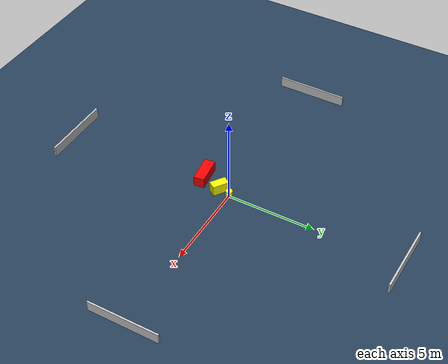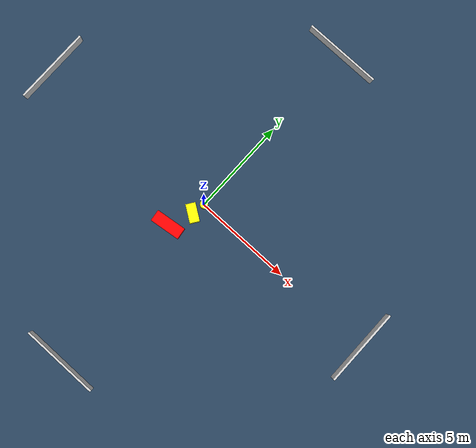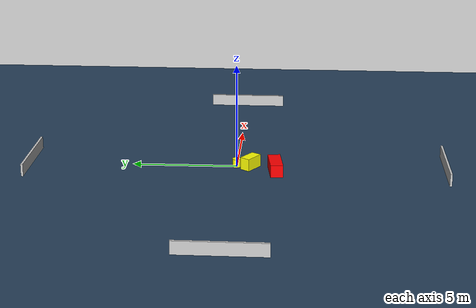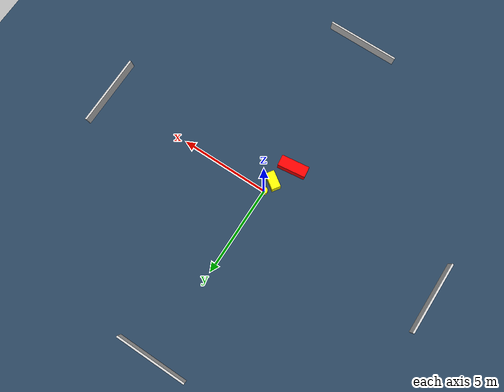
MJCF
<?xml version="1.0" ?>
<mujoco model="generated_environment">
  <option timestep="0.01" integrator="RK4" cone="elliptic"/>
  <default>
    <geom density="1"/>
  </default>
  <asset>
    <texture builtin="gradient" height="3072" name="skybox" rgb1="0.3 0.5 0.7" rgb2="0 0 0" type="skybox" width="512"/>
    <texture builtin="checker" height="300" name="groundplane" rgb1="0.2 0.3 0.4" rgb2="0.1 0.2 0.3" type="2d" width="300"/>
    <material name="groundplane" reflectance="0.2" texrepeat="5 5" texture="groundplane"/>
  </asset>
  <worldbody>
    <light dir="0 0 -1" directional="true" pos="0 0 1.5"/>
    <geom condim="3" friction="0.5 0.005 0.001" material="groundplane" name="floor" pos="0 0 0" size="0 0 0.05" type="plane"/>
    <body name="walls">
      <geom name="wall_1" condim="4" pos="-10.0 0.0 0.3" rgba="0.800000011920929 0.800000011920929 0.800000011920929 1.0" size="0.05 2.0 0.3" type="box"/>
      <geom name="wall_2" condim="4" pos="10.0 0.0 0.3" rgba="0.800000011920929 0.800000011920929 0.800000011920929 1.0" size="0.05 2.0 0.3" type="box"/>
      <geom name="wall_3" condim="4" pos="0.0 -10.0 0.3" rgba="0.800000011920929 0.800000011920929 0.800000011920929 1.0" size="2.0 0.05 0.3" type="box"/>
      <geom name="wall_4" condim="4" pos="0.0 10.0 0.3" rgba="0.800000011920929 0.800000011920929 0.800000011920929 1.0" size="2.0 0.05 0.3" type="box"/>
    </body>
    <body name="robot">
      <joint name="joint_x" type="slide" pos="0 0 0" axis="1 0 0"/>
      <joint name="joint_y" type="slide" pos="0 0 0" axis="0 1 0"/>
      <geom name="robot" type="cylinder" pos="0.0 0.0 0.2" size="0.2 0.2 0.0" mass="5.0" friction="1.0 0.005 0.0001" condim="4" rgba="1.0 1.0 0.0 1.0"/>
    </body>
    <body name="obstacle_1_movable">
      <geom name="obstacle_1_movable" condim="4" pos="-0.12035121571211567 -0.6768424843106593 0.3" euler="0 0 55.495724111116274" friction="0.0 0.005 0.001" rgba="1.0 1.0 0.0 1.0" size="0.2491457483989909 0.466088013584305 0.3" type="box" mass="0.1"/>
      <joint type="free"/>
    </body>
    <body name="obstacle_2_static">
      <geom name="obstacle_2_static" condim="4" pos="-0.6112313157508462 -1.8819398830456846 0.3" euler="0 0 7.231264087281972" friction="0.0 0.005 0.001" rgba="1.0 0.0 0.0 1.0" size="0.7731771759057631 0.2996925700581826 0.3" type="box"/>
    </body>
  </worldbody>
  <actuator>
    <motor name="actuator_x" joint="joint_x" gear="1" ctrlrange="-1 1"/>
    <motor name="actuator_y" joint="joint_y" gear="1" ctrlrange="-1 1"/>
  </actuator>
</mujoco>
